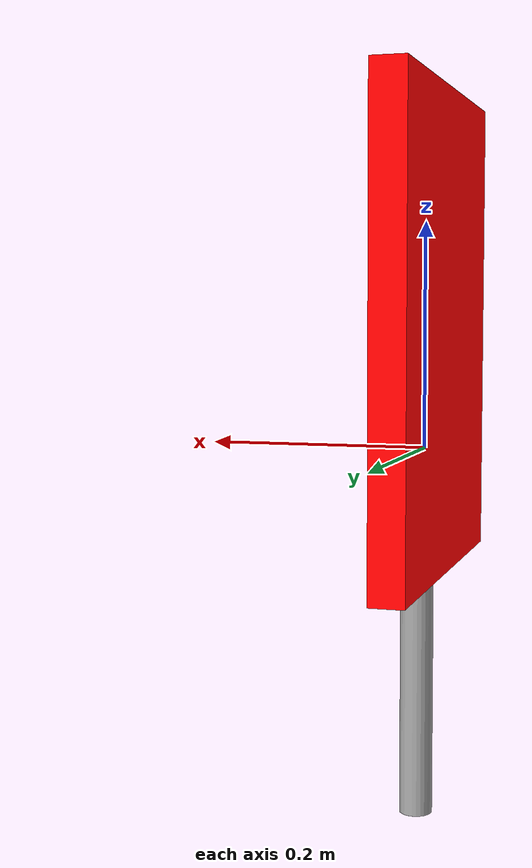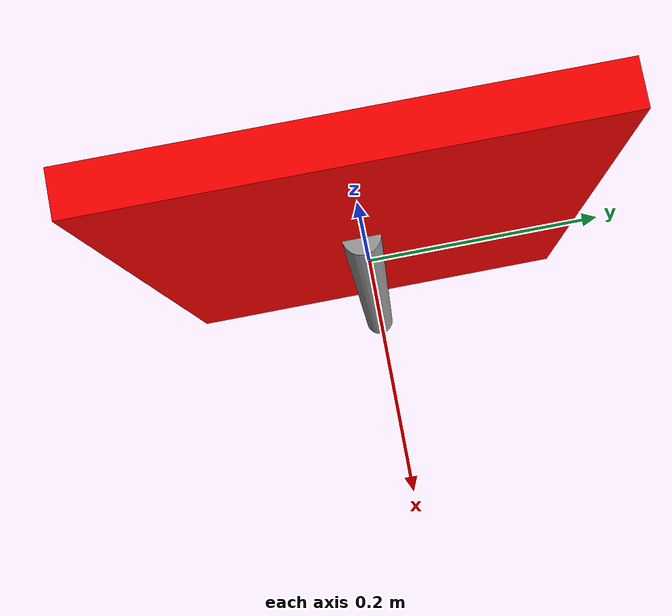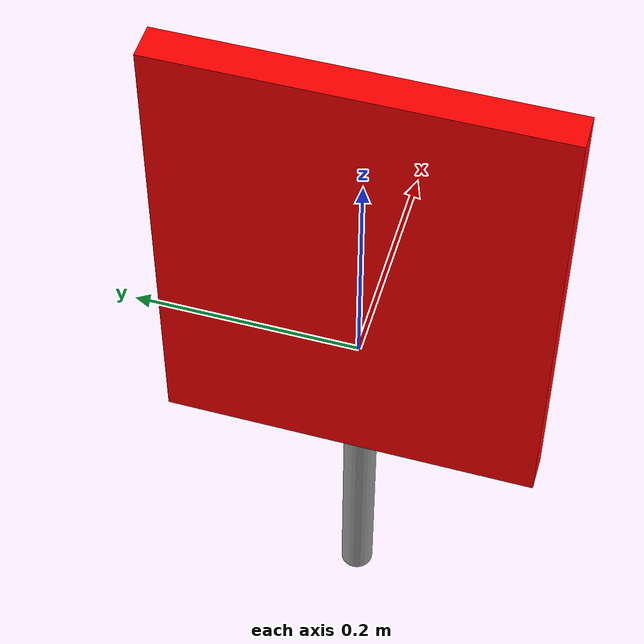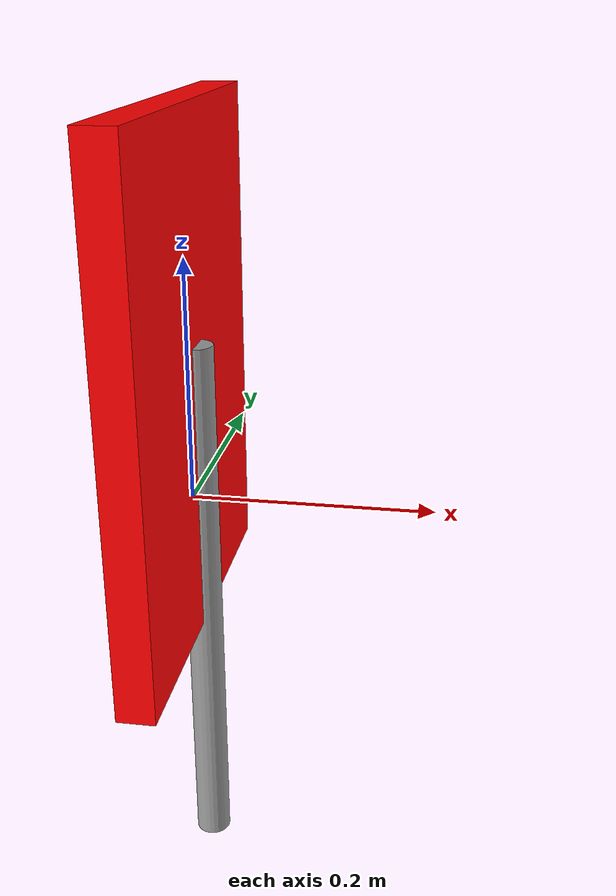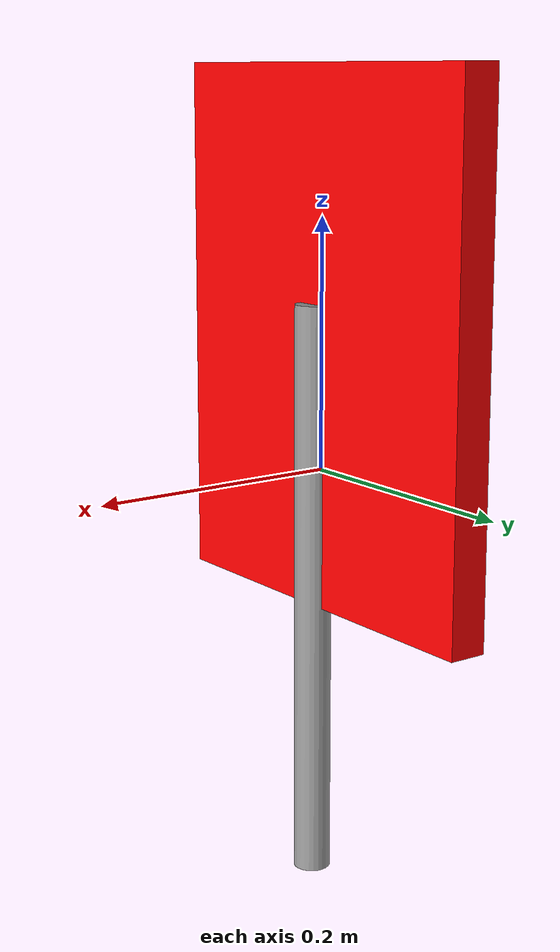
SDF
<?xml version='1.0'?>
<sdf version='1.6'>
  <model name='Stop_Sign'>
    <link name='link_0'>
      <inertial>
        <mass>0.00041452</mass>
        <inertia>
          <ixx>7.61e-06</ixx>
          <ixy>0</ixy>
          <ixz>0</ixz>
          <iyy>7.61e-06</iyy>
          <iyz>0</iyz>
          <izz>5e-08</izz>
        </inertia>
        <pose frame=''>0 0 0 0 -0 0</pose>
      </inertial>
      <pose frame=''>0.006807 -0.002088 -0.102153 0 -0 0</pose>
      <gravity>0</gravity>
      <self_collide>0</self_collide>
      <kinematic>1</kinematic>
      <enable_wind>0</enable_wind>
      <visual name='visual'>
        <pose frame=''>0 0 0 0 -0 0</pose>
        <geometry>
          <cylinder>
            <radius>0.0148581</radius>
            <length>0.468725</length>
          </cylinder>
        </geometry>
        <material>
          <lighting>1</lighting>
          <script>
            <uri>file://media/materials/scripts/gazebo.material</uri>
            <name>Gazebo/Grey</name>
          </script>
          <ambient>1 1 1 1</ambient>
          <shader type='vertex'>
            <normal_map>__default__</normal_map>
          </shader>
          <diffuse>0.7 0.7 0.7 1</diffuse>
          <specular>0.01 0.01 0.01 1</specular>
          <emissive>0 0 0 1</emissive>
        </material>
        <transparency>0</transparency>
        <cast_shadows>1</cast_shadows>
      </visual>
      <collision name='collision'>
        <laser_retro>0</laser_retro>
        <max_contacts>10</max_contacts>
        <pose frame=''>0 0 0 0 -0 0</pose>
        <geometry>
          <cylinder>
            <radius>0.014858</radius>
            <length>0.468725</length>
          </cylinder>
        </geometry>
        <surface>
          <friction>
            <ode>
              <mu>1</mu>
              <mu2>1</mu2>
              <fdir1>0 0 0</fdir1>
              <slip1>0</slip1>
              <slip2>0</slip2>
            </ode>
            <torsional>
              <coefficient>1</coefficient>
              <patch_radius>0</patch_radius>
              <surface_radius>0</surface_radius>
              <use_patch_radius>1</use_patch_radius>
              <ode>
                <slip>0</slip>
              </ode>
            </torsional>
          </friction>
          <bounce>
            <restitution_coefficient>0</restitution_coefficient>
            <threshold>1e+06</threshold>
          </bounce>
          <contact>
            <collide_without_contact>0</collide_without_contact>
            <collide_without_contact_bitmask>1</collide_without_contact_bitmask>
            <collide_bitmask>1</collide_bitmask>
            <ode>
              <soft_cfm>0</soft_cfm>
              <soft_erp>0.2</soft_erp>
              <kp>1e+13</kp>
              <kd>1</kd>
              <max_vel>0.01</max_vel>
              <min_depth>0</min_depth>
            </ode>
            <bullet>
              <split_impulse>1</split_impulse>
              <split_impulse_penetration_threshold>-0.01</split_impulse_penetration_threshold>
              <soft_cfm>0</soft_cfm>
              <soft_erp>0.2</soft_erp>
              <kp>1e+13</kp>
              <kd>1</kd>
            </bullet>
          </contact>
        </surface>
      </collision>
    </link>
    <link name='link_1'>
      <inertial>
        <mass>0.00439549</mass>
        <inertia>
          <ixx>0.00010732</ixx>
          <ixy>0</ixy>
          <ixz>0</ixz>
          <iyy>6.666e-05</iyy>
          <iyz>0</iyz>
          <izz>4.136e-05</izz>
        </inertia>
        <pose frame=''>0 0 0 0 -0 0</pose>
      </inertial>
      <pose frame=''>-0.006807 0.002088 0.102153 0 -0 0</pose>
      <gravity>0</gravity>
      <self_collide>0</self_collide>
      <kinematic>1</kinematic>
      <enable_wind>0</enable_wind>
      <visual name='visual'>
        <pose frame=''>0 0 0 0 -0 0</pose>
        <geometry>
          <box>
            <size>0.030878 0.334624 0.425474</size>
          </box>
        </geometry>
        <material>
          <lighting>1</lighting>
          <script>
            <uri>file://media/materials/scripts/gazebo.material</uri>
            <name>Gazebo/Grey</name>
          </script>
          <ambient>1 0 0 1</ambient>
          <shader type='vertex'>
            <normal_map>__default__</normal_map>
          </shader>
          <diffuse>0.7 0.7 0.7 1</diffuse>
          <specular>0.01 0.01 0.01 1</specular>
          <emissive>0 0 0 1</emissive>
        </material>
        <transparency>0</transparency>
        <cast_shadows>1</cast_shadows>
      </visual>
      <collision name='collision'>
        <laser_retro>0</laser_retro>
        <max_contacts>10</max_contacts>
        <pose frame=''>0 0 0 0 -0 0</pose>
        <geometry>
          <box>
            <size>0.030878 0.334624 0.425474</size>
          </box>
        </geometry>
        <surface>
          <friction>
            <ode>
              <mu>1</mu>
              <mu2>1</mu2>
              <fdir1>0 0 0</fdir1>
              <slip1>0</slip1>
              <slip2>0</slip2>
            </ode>
            <torsional>
              <coefficient>1</coefficient>
              <patch_radius>0</patch_radius>
              <surface_radius>0</surface_radius>
              <use_patch_radius>1</use_patch_radius>
              <ode>
                <slip>0</slip>
              </ode>
            </torsional>
          </friction>
          <bounce>
            <restitution_coefficient>0</restitution_coefficient>
            <threshold>1e+06</threshold>
          </bounce>
          <contact>
            <collide_without_contact>0</collide_without_contact>
            <collide_without_contact_bitmask>1</collide_without_contact_bitmask>
            <collide_bitmask>1</collide_bitmask>
            <ode>
              <soft_cfm>0</soft_cfm>
              <soft_erp>0.2</soft_erp>
              <kp>1e+13</kp>
              <kd>1</kd>
              <max_vel>0.01</max_vel>
              <min_depth>0</min_depth>
            </ode>
            <bullet>
              <split_impulse>1</split_impulse>
              <split_impulse_penetration_threshold>-0.01</split_impulse_penetration_threshold>
              <soft_cfm>0</soft_cfm>
              <soft_erp>0.2</soft_erp>
              <kp>1e+13</kp>
              <kd>1</kd>
            </bullet>
          </contact>
        </surface>
      </collision>
    </link>
    <static>0</static>
    <allow_auto_disable>1</allow_auto_disable>
  </model>
</sdf>
